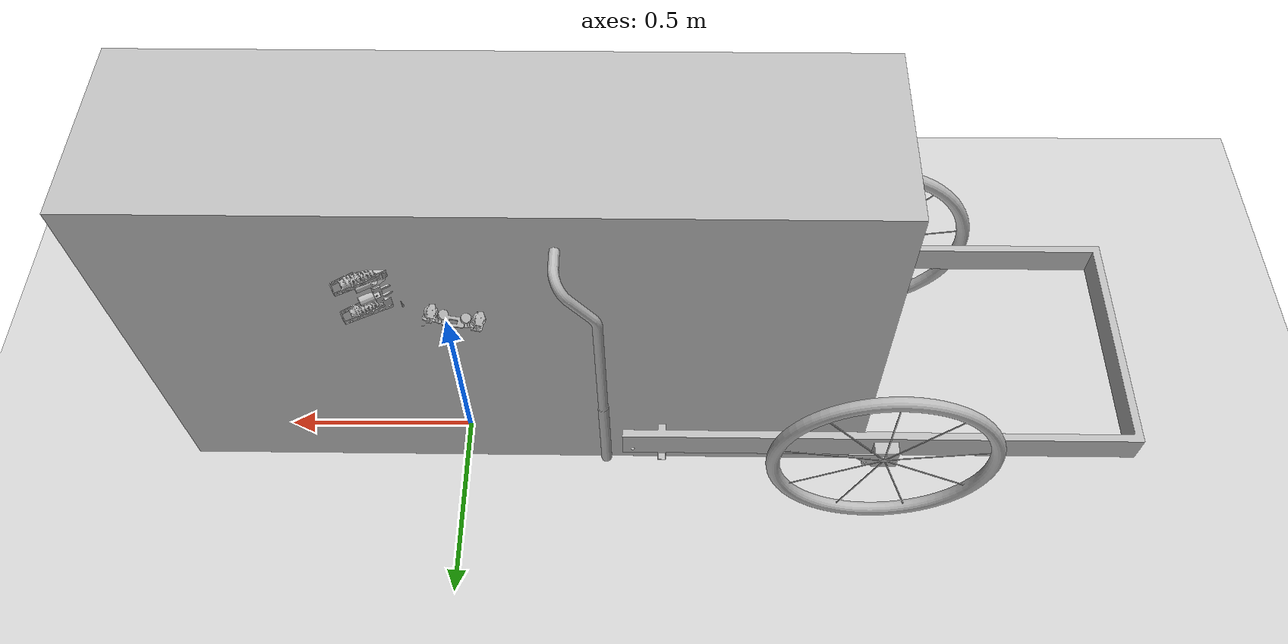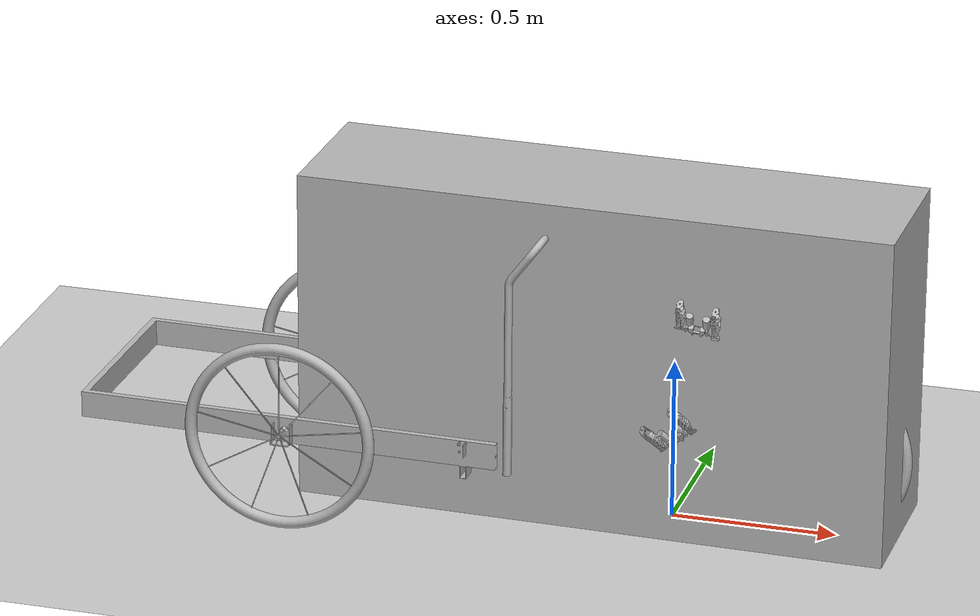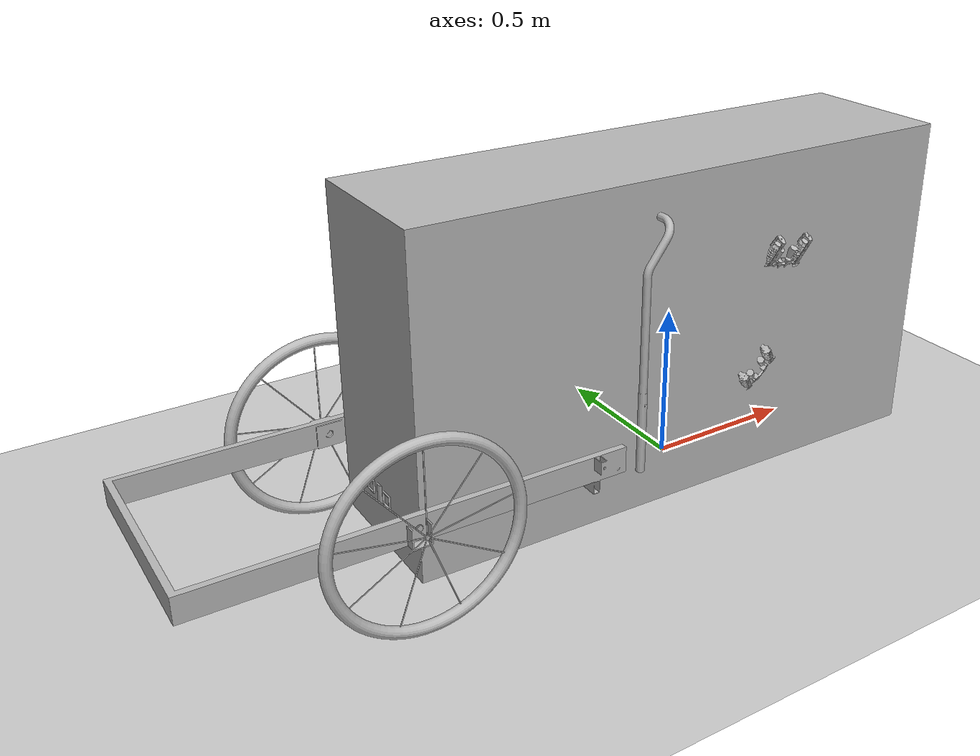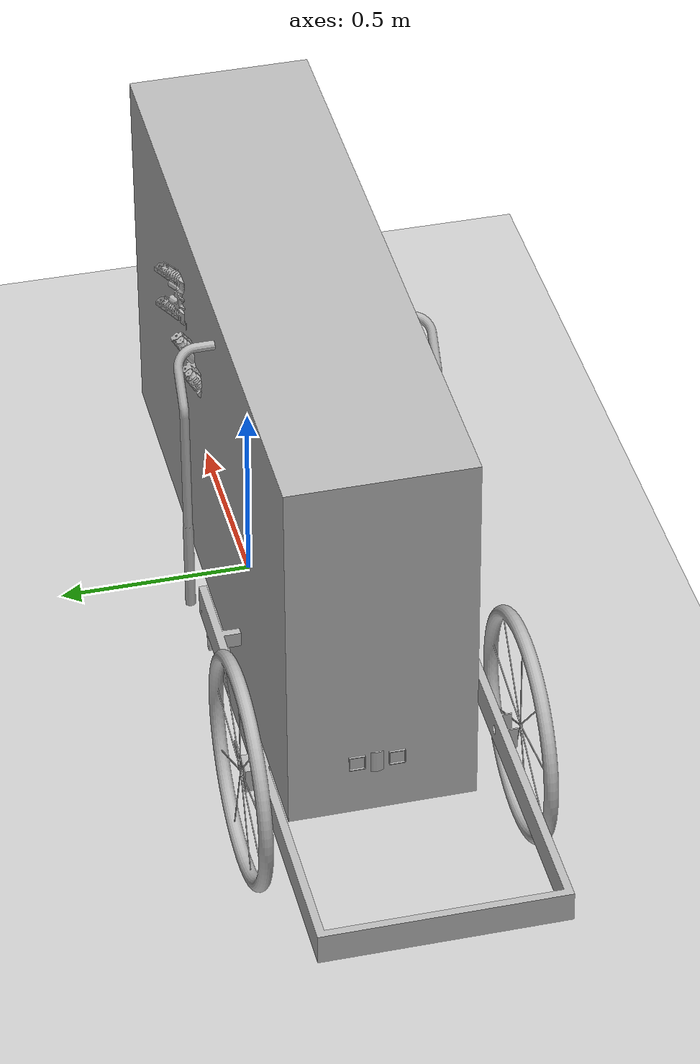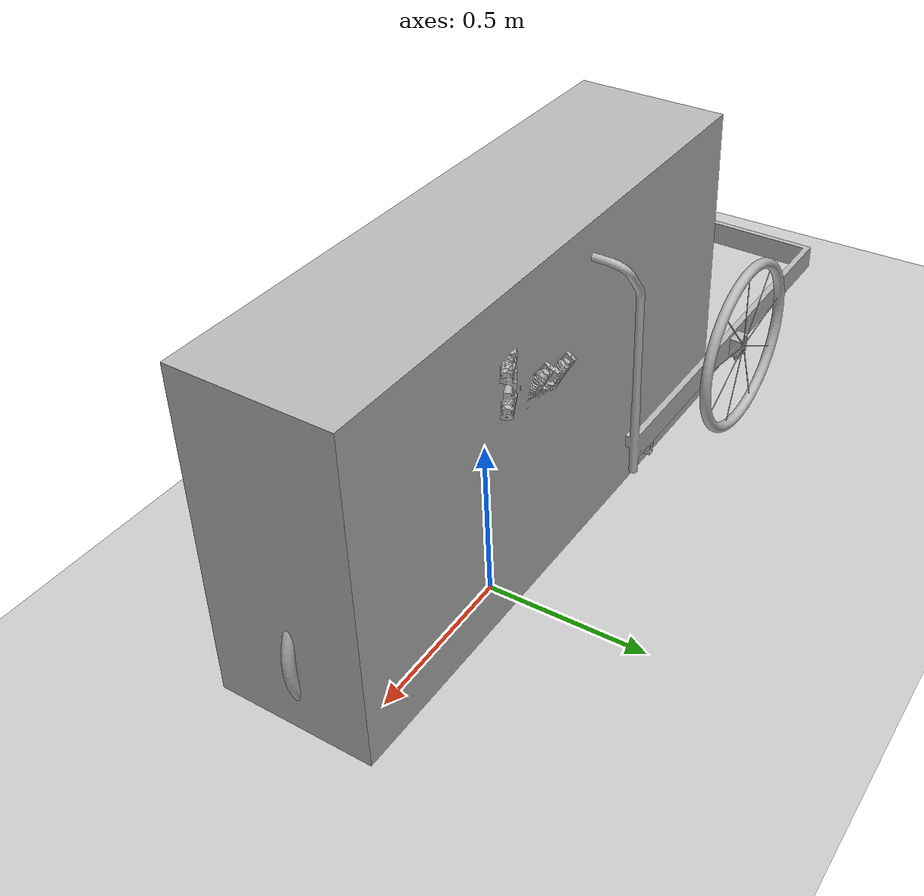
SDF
<sdf version="1.6">
 <world name="default">
  <light name="sun" type="directional">
   <pose>0 0 10 0 -0 0</pose>
   <diffuse>0.8 0.8 0.8 1</diffuse>
   <specular>0.2 0.2 0.2 1</specular>
   <attenuation>
    <range>1000</range>
    <constant>0.9</constant>
    <linear>0.01</linear>
    <quadratic>0.001</quadratic>
   </attenuation>
   <direction>-0.5 0.1 -0.9</direction>
  </light>
  <model name="ground_plane">
   <static>1</static>
   <link name="link">
    <collision name="collision">
     <geometry><plane><normal>0 0 1</normal><size>100 100</size></plane></geometry>
     <surface>
      <contact><collide_bitmask>65535</collide_bitmask></contact>
      <friction><ode><mu>100</mu><mu2>50</mu2></ode></friction>
     </surface>
    </collision>
    <visual name="visual">
     <cast_shadows>0</cast_shadows>
     <geometry><plane><normal>0 0 1</normal><size>100 100</size></plane></geometry>
     <material>
      <script><uri>file://media/materials/scripts/gazebo.material</uri><name>Gazebo/Grey</name></script>
     </material>
    </visual>
   </link>
  </model>
  <gravity>0 0 -9.81</gravity>
  <magnetic_field>6e-06 2.3e-05 -4.2e-05</magnetic_field>
  <atmosphere type="adiabatic"/>
  <physics name="default_physics" default="0" type="ode">
   <max_step_size>0.001</max_step_size>
   <real_time_factor>1</real_time_factor>
   <real_time_update_rate>1000</real_time_update_rate>
  </physics>
  <scene><ambient>0.4 0.4 0.4 1</ambient><background>0.7 0.7 0.7 1</background><shadows>1</shadows></scene>
  <audio><device>default</device></audio>
  <spherical_coordinates>
   <surface_model>EARTH_WGS84</surface_model>
   <latitude_deg>0</latitude_deg>
   <longitude_deg>0</longitude_deg>
   <elevation>0</elevation>
   <heading_deg>0</heading_deg>
  </spherical_coordinates>
  <model name="biking_legs">
   <link name="bike">
    <inertial>
     <mass>21.8195</mass>
     <inertia>
      <ixx>7.74875</ixx>
      <ixy>0.0634634</ixy>
      <ixz>-3.10839</ixz>
      <iyy>11.3423</iyy>
      <iyz>0.17003</iyz>
      <izz>4.19727</izz>
     </inertia>
    </inertial>
    <collision name="bike_collision">
     <geometry>
      <mesh><uri>model://biking_legs/meshes/collisions/bike.stl</uri><scale>0.001 0.001 0.001</scale></mesh>
     </geometry>
    </collision>
    <visual name="bike_visual">
     <geometry>
      <mesh><uri>model://biking_legs/meshes/CAD/bike.stl</uri><scale>0.001 0.001 0.001</scale></mesh>
     </geometry>
    </visual>
   </link>
   <link name="front_part">
    <pose>-0.71639 0.010389 0.216438 0 -0 0</pose>
    <inertial>
     <mass>16.8107</mass>
     <inertia>
      <ixx>3.20923</ixx>
      <ixy>0.181136</ixy>
      <ixz>1.24197</ixz>
      <iyy>14.663</iyy>
      <iyz>-0.00672308</iyz>
      <izz>13.9129</izz>
     </inertia>
    </inertial>
    <collision name="front_part_collision">
     <geometry>
      <mesh><uri>model://biking_legs/meshes/collisions/front_part.stl</uri><scale>0.001 0.001 0.001</scale></mesh>
     </geometry>
    </collision>
    <visual name="front_part_visual">
     <geometry>
      <mesh><uri>model://biking_legs/meshes/CAD/front_part.stl</uri><scale>0.001 0.001 0.001</scale></mesh>
     </geometry>
    </visual>
   </link>
   <link name="left_wheel">
    <pose>-0.998426 -0.35 0.045667 0 -0 0</pose>
    <inertial>
     <mass>13.3402</mass>
     <inertia>
      <ixx>2.17117</ixx>
      <ixy>-4.66171</ixy>
      <ixz>0.608246</ixz>
      <iyy>14.3423</iyy>
      <iyz>0.213222</iyz>
      <izz>15.4415</izz>
     </inertia>
    </inertial>
    <collision name="left_wheel_collision">
     <geometry>
      <mesh><uri>model://biking_legs/meshes/CAD/left_wheel.stl</uri><scale>0.001 0.001 0.001</scale></mesh>
     </geometry>
    </collision>
    <visual name="left_wheel_visual">
     <geometry>
      <mesh><uri>model://biking_legs/meshes/CAD/left_wheel.stl</uri><scale>0.001 0.001 0.001</scale></mesh>
     </geometry>
    </visual>
   </link>
   <link name="right_wheel">
    <pose>-0.998426 0.342 0.045667 0 -0 0</pose>
    <inertial>
     <mass>13.3402</mass>
     <inertia>
      <ixx>2.09732</ixx>
      <ixy>4.55516</ixy>
      <ixz>0.608246</ixz>
      <iyy>14.3423</iyy>
      <iyz>-0.208348</iyz>
      <izz>15.3677</izz>
     </inertia>
    </inertial>
    <collision name="right_wheel_collision">
     <geometry>
      <mesh><uri>model://biking_legs/meshes/CAD/right_wheel.stl</uri><scale>0.001 0.001 0.001</scale></mesh>
     </geometry>
    </collision>
    <visual name="right_wheel_visual">
     <geometry>
      <mesh><uri>model://biking_legs/meshes/CAD/right_wheel.stl</uri><scale>0.001 0.001 0.001</scale></mesh>
     </geometry>
    </visual>
   </link>
   <link name="pedal_right">
    <pose>0.077746 0.147989 0.171813 0 -0 0</pose>
    <inertial>
     <mass>0.946003</mass>
     <inertia>
      <ixx>0.0493529</ixx>
      <ixy>-0.0108843</ixy>
      <ixz>-0.0127863</ixz>
      <iyy>0.0340586</iyy>
      <iyz>-0.0240535</iyz>
      <izz>0.0272547</izz>
     </inertia>
    </inertial>
    <collision name="pedal_right_collision">
     <geometry>
      <mesh><uri>model://biking_legs/meshes/CAD/pedal_right.stl</uri><scale>0.001 0.001 0.001</scale></mesh>
     </geometry>
    </collision>
    <visual name="pedal_right_visual">
     <geometry>
      <mesh><uri>model://biking_legs/meshes/CAD/pedal_right.stl</uri><scale>0.001 0.001 0.001</scale></mesh>
     </geometry>
    </visual>
   </link>
   <link name="kurbel">
    <pose>0.092229 0.000132 0.004277 0 -0 0</pose>
    <inertial>
     <mass>2.78327</mass>
     <inertia>
      <ixx>0.0332153</ixx>
      <ixy>0.00102181</ixy>
      <ixz>0.000301436</ixz>
      <iyy>0.0415869</iyy>
      <iyz>-0.0129372</iyz>
      <izz>0.0397311</izz>
     </inertia>
    </inertial>
    <collision name="kurbel_collision">
     <geometry>
      <mesh><uri>model://biking_legs/meshes/CAD/kurbel.stl</uri><scale>0.001 0.001 0.001</scale></mesh>
     </geometry>
    </collision>
    <visual name="kurbel_visual">
     <geometry>
      <mesh><uri>model://biking_legs/meshes/CAD/kurbel.stl</uri><scale>0.001 0.001 0.001</scale></mesh>
     </geometry>
    </visual>
   </link>
   <link name="pedal_left">
    <pose>0.107358 -0.149245 -0.165248 0 -0 0</pose>
    <inertial>
     <mass>0.946003</mass>
     <inertia>
      <ixx>0.0475877</ixx>
      <ixy>0.0151574</ixy>
      <ixz>0.0166445</ixz>
      <iyy>0.0371506</iyy>
      <iyz>-0.0233307</iyz>
      <izz>0.0328179</izz>
     </inertia>
    </inertial>
    <collision name="pedal_left_collision">
     <geometry>
      <mesh><uri>model://biking_legs/meshes/CAD/pedal_left.stl</uri><scale>0.001 0.001 0.001</scale></mesh>
     </geometry>
    </collision>
    <visual name="pedal_left_visual">
     <geometry>
      <mesh><uri>model://biking_legs/meshes/CAD/pedal_left.stl</uri><scale>0.001 0.001 0.001</scale></mesh>
     </geometry>
    </visual>
   </link>
   <link name="foot_left">
    <pose>0.189767 -0.185435 -0.082866 0 -0 0</pose>
    <inertial>
     <mass>0.729404</mass>
     <inertia>
      <ixx>0.0306577</ixx>
      <ixy>0.0256701</ixy>
      <ixz>0.0114065</ixz>
      <iyy>0.0319233</iyy>
      <iyz>-0.0112088</iyz>
      <izz>0.0519604</izz>
     </inertia>
    </inertial>
    <collision name="foot_left_collision">
     <geometry>
      <mesh><uri>model://biking_legs/meshes/collisions/foot_left.stl</uri><scale>0.001 0.001 0.001</scale></mesh>
     </geometry>
    </collision>
    <visual name="foot_left_visual">
     <geometry>
      <mesh><uri>model://biking_legs/meshes/visuals/foot_left.stl</uri><scale>0.001 0.001 0.001</scale></mesh>
     </geometry>
    </visual>
   </link>
   <link name="foot_left_tip">
    <pose>0.108261 -0.18435 -0.145518 0 -0 0</pose>
    <inertial>
     <mass>0.277946</mass>
     <inertia>
      <ixx>0.0154469</ixx>
      <ixy>0.00555427</ixy>
      <ixz>0.00432897</ixz>
      <iyy>0.00925802</iyy>
      <iyz>-0.00745169</iyz>
      <izz>0.0128642</izz>
     </inertia>
    </inertial>
    <collision name="foot_left_tip_collision">
     <geometry>
      <mesh>
       <uri>model://biking_legs/meshes/collisions/foot_left_tip.stl</uri>
       <scale>0.001 0.001 0.001</scale>
      </mesh>
     </geometry>
    </collision>
    <visual name="foot_left_tip_visual">
     <geometry>
      <mesh><uri>model://biking_legs/meshes/visuals/foot_left_tip.stl</uri><scale>0.001 0.001 0.001</scale></mesh>
     </geometry>
    </visual>
   </link>
   <link name="foot_right">
    <pose>0.160105 0.16245 0.266247 0 -0 0</pose>
    <inertial>
     <mass>0.729388</mass>
     <inertia>
      <ixx>0.0715324</ixx>
      <ixy>-0.0189714</ixy>
      <ixz>-0.031158</ixz>
      <iyy>0.0710483</iyy>
      <iyz>-0.031546</iyz>
      <izz>0.0385452</izz>
     </inertia>
    </inertial>
    <collision name="foot_right_collision">
     <geometry>
      <mesh><uri>model://biking_legs/meshes/collisions/foot_right.stl</uri><scale>0.001 0.001 0.001</scale></mesh>
     </geometry>
    </collision>
    <visual name="foot_right_visual">
     <geometry>
      <mesh><uri>model://biking_legs/meshes/visuals/foot_right.stl</uri><scale>0.001 0.001 0.001</scale></mesh>
     </geometry>
    </visual>
   </link>
   <link name="foot_right_tip">
    <pose>0.084244 0.161366 0.196675 0 -0 0</pose>
    <inertial>
     <mass>0.277961</mass>
     <inertia>
      <ixx>0.0181134</ixx>
      <ixy>-0.0037852</ixy>
      <ixz>-0.00465819</ixz>
      <iyy>0.0128388</iyy>
      <iyz>-0.00882627</iyz>
      <izz>0.00936199</izz>
     </inertia>
    </inertial>
    <collision name="foot_right_tip_collision">
     <geometry>
      <mesh>
       <uri>model://biking_legs/meshes/collisions/foot_right_tip.stl</uri>
       <scale>0.001 0.001 0.001</scale>
      </mesh>
     </geometry>
    </collision>
    <visual name="foot_right_tip_visual">
     <geometry>
      <mesh><uri>model://biking_legs/meshes/visuals/foot_right_tip.stl</uri><scale>0.001 0.001 0.001</scale></mesh>
     </geometry>
    </visual>
   </link>
   <link name="thigh_right">
    <pose>0.152917 0.187234 0.588125 0 -0 0</pose>
    <inertial>
     <mass>5.56245</mass>
     <inertia>
      <ixx>2.13116</ixx>
      <ixy>-0.162313</ixy>
      <ixz>-0.499165</ixz>
      <iyy>2.08522</iyy>
      <iyz>-0.612531</iyz>
      <izz>0.353279</izz>
     </inertia>
    </inertial>
    <collision name="thigh_right_collision">
     <geometry>
      <mesh><uri>model://biking_legs/meshes/collisions/thigh_right.stl</uri><scale>0.001 0.001 0.001</scale></mesh>
     </geometry>
    </collision>
    <visual name="thigh_right_visual">
     <geometry>
      <mesh><uri>model://biking_legs/meshes/visuals/thigh_right.stl</uri><scale>0.001 0.001 0.001</scale></mesh>
     </geometry>
    </visual>
   </link>
   <link name="thigh_left">
    <pose>0.239271 -0.209617 0.484082 0 -0 0</pose>
    <inertial>
     <mass>5.5625</mass>
     <inertia>
      <ixx>1.57564</ixx>
      <ixy>0.278754</ixy>
      <ixz>-0.647309</ixz>
      <iyy>1.65309</iyy>
      <iyz>0.567528</iyz>
      <izz>0.5755</izz>
     </inertia>
    </inertial>
    <collision name="thigh_left_collision">
     <geometry>
      <mesh><uri>model://biking_legs/meshes/collisions/thigh_left.stl</uri><scale>0.001 0.001 0.001</scale></mesh>
     </geometry>
    </collision>
    <visual name="thigh_left_visual">
     <geometry>
      <mesh><uri>model://biking_legs/meshes/visuals/thigh_left.stl</uri><scale>0.001 0.001 0.001</scale></mesh>
     </geometry>
    </visual>
   </link>
   <link name="shin_right">
    <pose>0.031394 0.186662 0.450507 0 -0 0</pose>
    <inertial>
     <mass>5.74056</mass>
     <inertia>
      <ixx>1.39436</ixx>
      <ixy>-0.0321225</ixy>
      <ixz>-0.0676332</ixz>
      <iyy>1.21352</iyy>
      <iyz>-0.485848</iyz>
      <izz>0.228689</izz>
     </inertia>
    </inertial>
    <collision name="shin_right_collision">
     <geometry>
      <mesh><uri>model://biking_legs/meshes/collisions/shin_right.stl</uri><scale>0.001 0.001 0.001</scale></mesh>
     </geometry>
    </collision>
    <visual name="shin_right_visual">
     <geometry>
      <mesh><uri>model://biking_legs/meshes/visuals/shin_right.stl</uri><scale>0.001 0.001 0.001</scale></mesh>
     </geometry>
    </visual>
   </link>
   <link name="shin_left">
    <pose>0.198184 -0.20868 0.138684 0 -0 0</pose>
    <inertial>
     <mass>5.74153</mass>
     <inertia>
      <ixx>0.400402</ixx>
      <ixy>0.237799</ixy>
      <ixz>-0.159346</ixz>
      <iyy>0.378731</iyy>
      <iyz>0.169585</iyz>
      <izz>0.487872</izz>
     </inertia>
    </inertial>
    <collision name="shin_left_collision">
     <geometry>
      <mesh><uri>model://biking_legs/meshes/collisions/shin_left.stl</uri><scale>0.001 0.001 0.001</scale></mesh>
     </geometry>
    </collision>
    <visual name="shin_left_visual">
     <geometry>
      <mesh><uri>model://biking_legs/meshes/visuals/shin_left.stl</uri><scale>0.001 0.001 0.001</scale></mesh>
     </geometry>
    </visual>
   </link>
   <link name="wheel_back">
    <pose>0.536897 0.00355 0.049416 0 -0 0</pose>
    <inertial>
     <mass>13.3402</mass>
     <inertia>
      <ixx>0.541919</ixx>
      <ixy>-0.0254258</ixy>
      <ixz>-0.353931</ixz>
      <iyy>4.8943</iyy>
      <iyz>-0.00234019</iyz>
      <izz>4.35476</izz>
     </inertia>
    </inertial>
    <collision name="wheel_back_collision">
     <geometry>
      <mesh><uri>model://biking_legs/meshes/CAD/wheel_back.stl</uri><scale>0.001 0.001 0.001</scale></mesh>
     </geometry>
    </collision>
    <visual name="wheel_back_visual">
     <geometry>
      <mesh><uri>model://biking_legs/meshes/CAD/wheel_back.stl</uri><scale>0.001 0.001 0.001</scale></mesh>
     </geometry>
    </visual>
   </link>
   <joint name="joint_pedal_right" type="revolute">
    <parent>kurbel</parent>
    <child>pedal_right</child>
    <pose>7.8e-05 0.042 -4e-06 0 -0 0</pose>
    <axis>
     <xyz>-0 1 -0</xyz>
     <limit><lower>-3.14159e+17</lower><upper>3.14159e+17</upper></limit>
     <use_parent_model_frame>0</use_parent_model_frame>
     <dynamics><spring_reference>0</spring_reference><spring_stiffness>0</spring_stiffness></dynamics>
    </axis>
   </joint>
   <joint name="joint_pedal_left" type="revolute">
    <parent>kurbel</parent>
    <child>pedal_left</child>
    <pose>-3e-05 -0.042 -7.2e-05 0 -0 0</pose>
    <axis>
     <xyz>0 -1 0</xyz>
     <limit><lower>-3.14159e+17</lower><upper>3.14159e+17</upper></limit>
     <use_parent_model_frame>0</use_parent_model_frame>
     <dynamics><spring_reference>0</spring_reference><spring_stiffness>0</spring_stiffness></dynamics>
    </axis>
   </joint>
   <joint name="joint_hip_left" type="revolute">
    <parent>bike</parent>
    <child>thigh_left</child>
    <pose>0.009267 0.010551 0.110839 0 -0 0</pose>
    <axis>
     <xyz>-0 -1 -0</xyz>
     <limit><lower>-3.14159</lower><upper>3.14159</upper></limit>
     <use_parent_model_frame>0</use_parent_model_frame>
     <dynamics><spring_reference>0</spring_reference><spring_stiffness>0</spring_stiffness></dynamics>
    </axis>
   </joint>
   <joint name="joint_hip_right" type="revolute">
    <parent>bike</parent>
    <child>thigh_right</child>
    <pose>0.111196 -0.021903 0.002128 0 -0 0</pose>
    <axis>
     <xyz>-0 -1 0</xyz>
     <limit><lower>-3.14159</lower><upper>3.14159</upper></limit>
     <use_parent_model_frame>0</use_parent_model_frame>
     <dynamics><spring_reference>0</spring_reference><spring_stiffness>0</spring_stiffness></dynamics>
    </axis>
   </joint>
   <joint name="joint_knee_left" type="revolute">
    <parent>thigh_left</parent>
    <child>shin_left</child>
    <pose>0.027854 0.033665 0.147878 0 -0 0</pose>
    <axis>
     <xyz>-0 -1 -0</xyz>
     <limit><lower>-3.14159</lower><upper>3.14159</upper></limit>
     <use_parent_model_frame>0</use_parent_model_frame>
     <dynamics><spring_reference>0</spring_reference><spring_stiffness>0</spring_stiffness></dynamics>
    </axis>
   </joint>
   <joint name="joint_foot_left" type="fixed">
    <parent>shin_left</parent>
    <child>foot_left</child>
    <pose>-0.010876 0.023919 0.023483 0 -0 0</pose>
    <axis>
     <xyz>0 1 -0</xyz>
     <limit><lower>-3.14159</lower><upper>3.14159</upper></limit>
     <use_parent_model_frame>0</use_parent_model_frame>
    </axis>
   </joint>
   <joint name="joint_foot_left_tip" type="fixed">
    <parent>foot_left</parent>
    <child>foot_left_tip</child>
    <pose>0.033571 -0.001166 0.024324 0 -0 0</pose>
   </joint>
   <joint name="joint_knee_right" type="revolute">
    <parent>thigh_right</parent>
    <child>shin_right</child>
    <pose>-0.076281 -0.013632 0.129746 0 -0 0</pose>
    <axis>
     <xyz>0 1 -0</xyz>
     <limit><lower>-3.14159</lower><upper>3.14159</upper></limit>
     <use_parent_model_frame>0</use_parent_model_frame>
     <dynamics><spring_reference>0</spring_reference><spring_stiffness>0</spring_stiffness></dynamics>
    </axis>
   </joint>
   <joint name="joint_foot_right" type="fixed">
    <parent>shin_right</parent>
    <child>foot_right</child>
    <pose>-0.013005 0.02408 0.022387 0 -0 0</pose>
    <axis>
     <xyz>0 1 -0</xyz>
     <limit><lower>-3.14159</lower><upper>3.14159</upper></limit>
     <use_parent_model_frame>0</use_parent_model_frame>
    </axis>
   </joint>
   <joint name="joint_foot_right_tip" type="fixed">
    <parent>foot_right</parent>
    <child>foot_right_tip</child>
    <pose>0.031324 0.001164 0.027153 0 -0 0</pose>
   </joint>
   <joint name="joint_wheel_right" type="revolute">
    <parent>front_part</parent>
    <child>right_wheel</child>
    <pose>0 -0.004 0 0 -0 0</pose>
    <axis>
     <xyz>-0 1 0</xyz>
     <limit><lower>-3.14159e+15</lower><upper>3.14159e+15</upper></limit>
     <use_parent_model_frame>0</use_parent_model_frame>
     <dynamics><spring_reference>0</spring_reference><spring_stiffness>0</spring_stiffness></dynamics>
    </axis>
   </joint>
   <joint name="joint_wheel_back" type="revolute">
    <parent>bike</parent>
    <child>wheel_back</child>
    <pose>-0 -0.069 0 0 -0 0</pose>
    <axis>
     <xyz>0 1 0</xyz>
     <limit><lower>-3.14159e+15</lower><upper>3.14159e+15</upper></limit>
     <use_parent_model_frame>0</use_parent_model_frame>
     <dynamics><spring_reference>0</spring_reference><spring_stiffness>0</spring_stiffness></dynamics>
    </axis>
   </joint>
   <joint name="joint_pedal" type="revolute">
    <parent>bike</parent>
    <child>kurbel</child>
    <pose>0.000278 -0.035132 -0.001009 0 -0 0</pose>
    <axis>
     <xyz>-0 1 -0</xyz>
     <limit><lower>-3.14159e+15</lower><upper>3.14159e+15</upper></limit>
     <use_parent_model_frame>0</use_parent_model_frame>
     <dynamics><spring_reference>0</spring_reference><spring_stiffness>0</spring_stiffness></dynamics>
    </axis>
   </joint>
   <joint name="joint_wheel_left" type="revolute">
    <parent>front_part</parent>
    <child>left_wheel</child>
    <pose>0 0.046 0 0 -0 0</pose>
    <axis>
     <xyz>0 1 -0</xyz>
     <limit><lower>-3.14159e+15</lower><upper>3.14159e+15</upper></limit>
     <use_parent_model_frame>0</use_parent_model_frame>
     <dynamics><spring_reference>0</spring_reference><spring_stiffness>0</spring_stiffness></dynamics>
    </axis>
   </joint>
   <joint name="joint_front" type="fixed">
    <parent>bike</parent>
    <child>front_part</child>
    <pose>-0.230035 -0.010388 -0.205271 0 -0 0</pose>
    <axis>
     <xyz>0 -0 1</xyz>
     <limit><lower>-0.523599</lower><upper>0.523599</upper></limit>
     <use_parent_model_frame>0</use_parent_model_frame>
    </axis>
   </joint>
   <joint name="joint_foot_pedal_left" type="prismatic">
    <parent>pedal_left</parent>
    <child>foot_left_tip</child>
    <pose>-0.006838 -0.006895 -0.009398 0 -0 0</pose>
    <axis>
     <xyz>0.866025 -0 0.5</xyz>
     <limit><lower>0</lower><upper>0</upper></limit>
     <use_parent_model_frame>0</use_parent_model_frame>
     <dynamics><spring_reference>0</spring_reference><spring_stiffness>0</spring_stiffness></dynamics>
    </axis>
   </joint>
   <joint name="joint_foot_pedal_right" type="prismatic">
    <parent>pedal_right</parent>
    <child>foot_right_tip</child>
    <pose>6.8e-05 0.028623 -0.005719 0 -0 0</pose>
    <axis>
     <xyz>-0.819152 -0 -0.573576</xyz>
     <limit><lower>0</lower><upper>0</upper></limit>
     <use_parent_model_frame>0</use_parent_model_frame>
     <dynamics><spring_reference>0</spring_reference><spring_stiffness>0</spring_stiffness></dynamics>
    </axis>
   </joint>
   <plugin name="cardsflow_gazebo_plugin" filename="libcardsflow_gazebo_plugin.so"/>
   <pose>-0.091813 -0.080759 0.247251 -0.011614 0.004975 -0.009352</pose>
  </model>
 </world>
</sdf>
